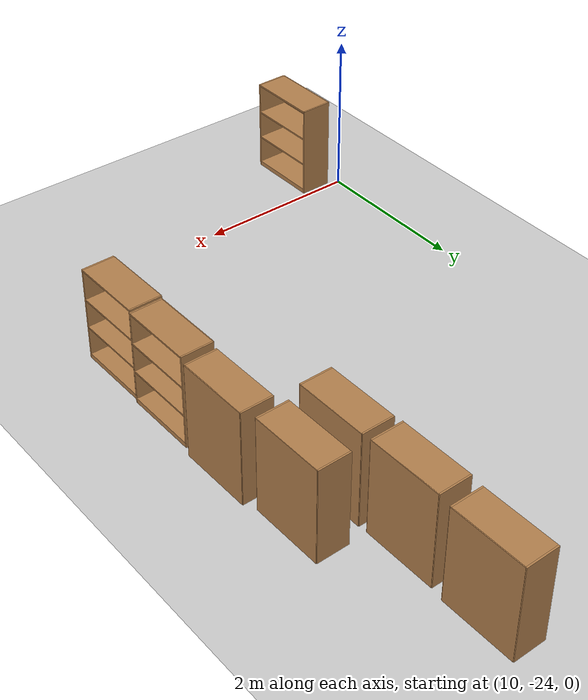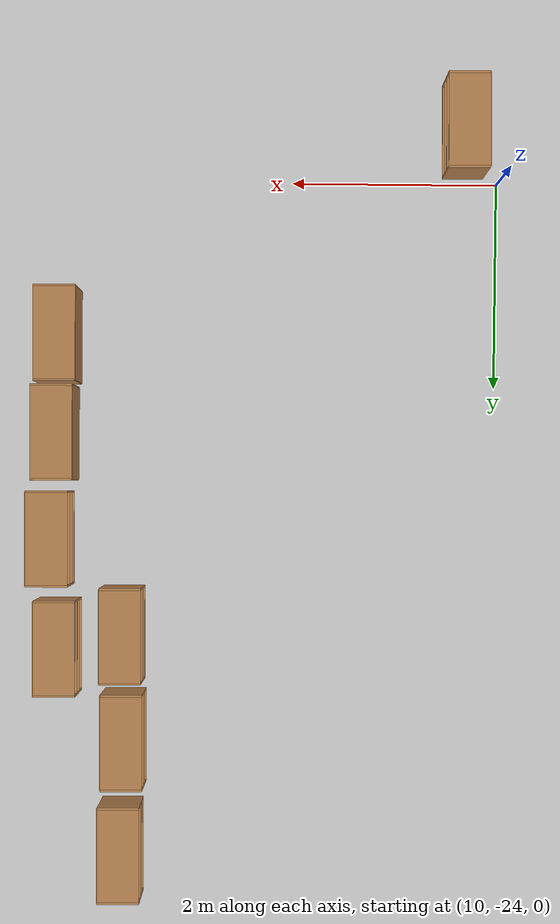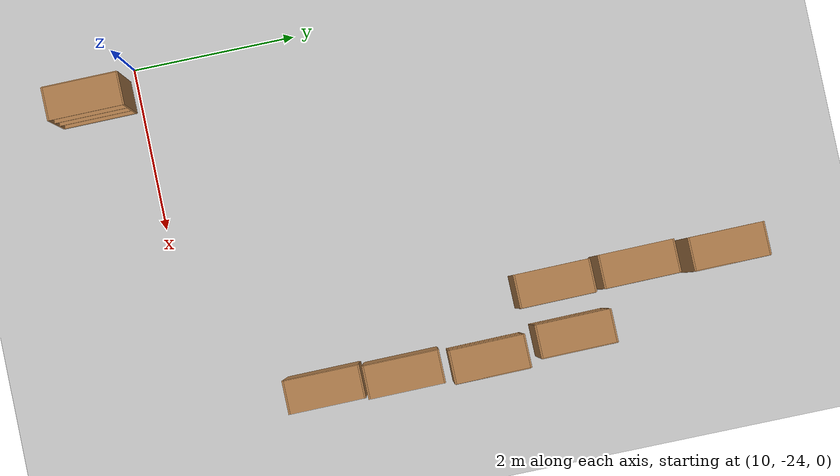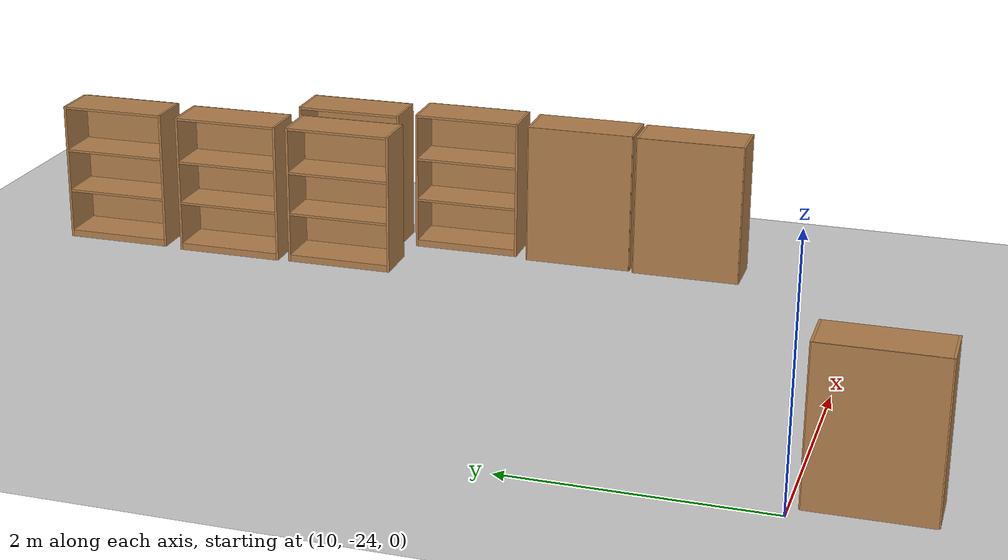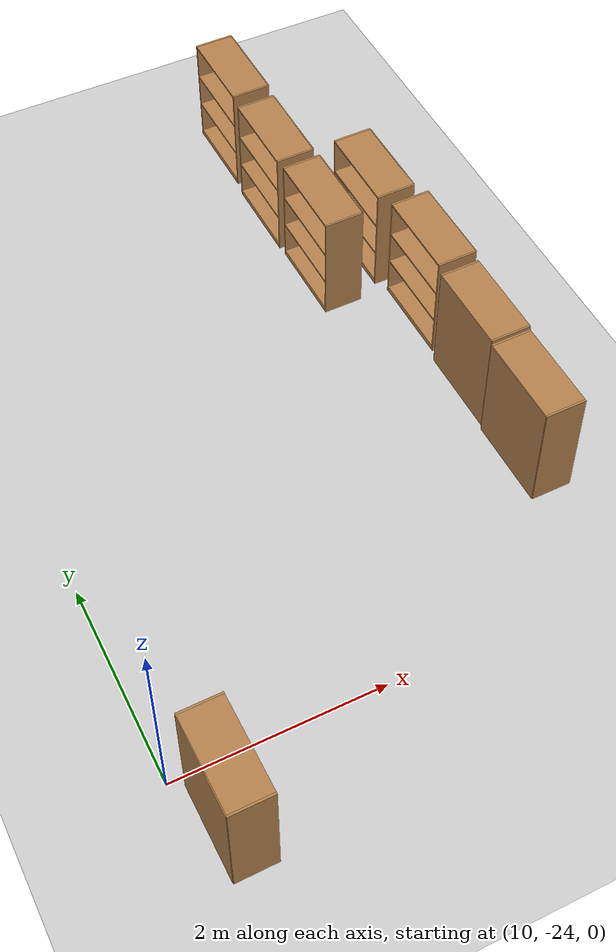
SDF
<sdf version="1.6">
 <world name="default">
  <model name="ground_plane">
   <static>1</static>
   <link name="link">
    <collision name="collision">
     <geometry><plane><normal>0 0 1</normal><size>100 100</size></plane></geometry>
     <surface>
      <contact><collide_bitmask>65535</collide_bitmask></contact>
      <friction><ode><mu>100</mu><mu2>50</mu2></ode></friction>
     </surface>
    </collision>
    <visual name="visual">
     <cast_shadows>0</cast_shadows>
     <geometry><plane><normal>0 0 1</normal><size>100 100</size></plane></geometry>
     <material>
      <script><uri>file://media/materials/scripts/gazebo.material</uri><name>Gazebo/Grey</name></script>
     </material>
    </visual>
   </link>
  </model>
  <model name="bookshelf_clone_2_clone_clone_0_clone_3_clone_0_clone_1_clone_clone_clone">
   <static>1</static>
   <link name="link">
    <inertial><mass>1</mass></inertial>
    <collision name="back">
     <pose>0 0.005 0.6 0 -0 0</pose>
     <geometry><box><size>0.9 0.01 1.2</size></box></geometry>
    </collision>
    <visual name="visual1">
     <pose>0 0.005 0.6 0 -0 0</pose>
     <geometry><box><size>0.9 0.01 1.2</size></box></geometry>
     <material>
      <script><uri>file://media/materials/scripts/gazebo.material</uri><name>Gazebo/Wood</name></script>
     </material>
    </visual>
    <collision name="left_side">
     <pose>0.45 -0.195 0.6 0 -0 0</pose>
     <geometry><box><size>0.02 0.4 1.2</size></box></geometry>
    </collision>
    <visual name="visual2">
     <pose>0.45 -0.195 0.6 0 -0 0</pose>
     <geometry><box><size>0.02 0.4 1.2</size></box></geometry>
     <material>
      <script><uri>file://media/materials/scripts/gazebo.material</uri><name>Gazebo/Wood</name></script>
     </material>
    </visual>
    <collision name="right_side">
     <pose>-0.45 -0.195 0.6 0 -0 0</pose>
     <geometry><box><size>0.02 0.4 1.2</size></box></geometry>
    </collision>
    <visual name="visual3">
     <pose>-0.45 -0.195 0.6 0 -0 0</pose>
     <geometry><box><size>0.02 0.4 1.2</size></box></geometry>
     <material>
      <script><uri>file://media/materials/scripts/gazebo.material</uri><name>Gazebo/Wood</name></script>
     </material>
    </visual>
    <collision name="bottom">
     <pose>0 -0.195 0.03 0 -0 0</pose>
     <geometry><box><size>0.88 0.4 0.06</size></box></geometry>
    </collision>
    <visual name="visual4">
     <pose>0 -0.195 0.03 0 -0 0</pose>
     <geometry><box><size>0.88 0.4 0.06</size></box></geometry>
     <material>
      <script><uri>file://media/materials/scripts/gazebo.material</uri><name>Gazebo/Wood</name></script>
     </material>
    </visual>
    <collision name="top">
     <pose>0 -0.195 1.19 0 -0 0</pose>
     <geometry><box><size>0.88 0.4 0.02</size></box></geometry>
    </collision>
    <visual name="visual5">
     <pose>0 -0.195 1.19 0 -0 0</pose>
     <geometry><box><size>0.88 0.4 0.02</size></box></geometry>
     <material>
      <script><uri>file://media/materials/scripts/gazebo.material</uri><name>Gazebo/Wood</name></script>
     </material>
    </visual>
    <collision name="low_shelf">
     <pose>0 -0.195 0.43 0 -0 0</pose>
     <geometry><box><size>0.88 0.4 0.02</size></box></geometry>
    </collision>
    <visual name="visual6">
     <pose>0 -0.195 0.43 0 -0 0</pose>
     <geometry><box><size>0.88 0.4 0.02</size></box></geometry>
     <material>
      <script><uri>file://media/materials/scripts/gazebo.material</uri><name>Gazebo/Wood</name></script>
     </material>
    </visual>
    <collision name="high_shelf">
     <pose>0 -0.195 0.8 0 -0 0</pose>
     <geometry><box><size>0.88 0.4 0.02</size></box></geometry>
    </collision>
    <visual name="visual7">
     <pose>0 -0.195 0.8 0 -0 0</pose>
     <geometry><box><size>0.88 0.4 0.02</size></box></geometry>
     <material>
      <script><uri>file://media/materials/scripts/gazebo.material</uri><name>Gazebo/Wood</name></script>
     </material>
    </visual>
   </link>
   <pose>13.8023 -19.5673 0 0 0 -1.56003</pose>
  </model>
  <model name="bookshelf_clone_2_clone_clone_0_clone_3_clone_0_clone_1_clone_clone_clone_0">
   <static>1</static>
   <link name="link">
    <inertial><mass>1</mass></inertial>
    <collision name="back">
     <pose>0 0.005 0.6 0 -0 0</pose>
     <geometry><box><size>0.9 0.01 1.2</size></box></geometry>
    </collision>
    <visual name="visual1">
     <pose>0 0.005 0.6 0 -0 0</pose>
     <geometry><box><size>0.9 0.01 1.2</size></box></geometry>
     <material>
      <script><uri>file://media/materials/scripts/gazebo.material</uri><name>Gazebo/Wood</name></script>
     </material>
    </visual>
    <collision name="left_side">
     <pose>0.45 -0.195 0.6 0 -0 0</pose>
     <geometry><box><size>0.02 0.4 1.2</size></box></geometry>
    </collision>
    <visual name="visual2">
     <pose>0.45 -0.195 0.6 0 -0 0</pose>
     <geometry><box><size>0.02 0.4 1.2</size></box></geometry>
     <material>
      <script><uri>file://media/materials/scripts/gazebo.material</uri><name>Gazebo/Wood</name></script>
     </material>
    </visual>
    <collision name="right_side">
     <pose>-0.45 -0.195 0.6 0 -0 0</pose>
     <geometry><box><size>0.02 0.4 1.2</size></box></geometry>
    </collision>
    <visual name="visual3">
     <pose>-0.45 -0.195 0.6 0 -0 0</pose>
     <geometry><box><size>0.02 0.4 1.2</size></box></geometry>
     <material>
      <script><uri>file://media/materials/scripts/gazebo.material</uri><name>Gazebo/Wood</name></script>
     </material>
    </visual>
    <collision name="bottom">
     <pose>0 -0.195 0.03 0 -0 0</pose>
     <geometry><box><size>0.88 0.4 0.06</size></box></geometry>
    </collision>
    <visual name="visual4">
     <pose>0 -0.195 0.03 0 -0 0</pose>
     <geometry><box><size>0.88 0.4 0.06</size></box></geometry>
     <material>
      <script><uri>file://media/materials/scripts/gazebo.material</uri><name>Gazebo/Wood</name></script>
     </material>
    </visual>
    <collision name="top">
     <pose>0 -0.195 1.19 0 -0 0</pose>
     <geometry><box><size>0.88 0.4 0.02</size></box></geometry>
    </collision>
    <visual name="visual5">
     <pose>0 -0.195 1.19 0 -0 0</pose>
     <geometry><box><size>0.88 0.4 0.02</size></box></geometry>
     <material>
      <script><uri>file://media/materials/scripts/gazebo.material</uri><name>Gazebo/Wood</name></script>
     </material>
    </visual>
    <collision name="low_shelf">
     <pose>0 -0.195 0.43 0 -0 0</pose>
     <geometry><box><size>0.88 0.4 0.02</size></box></geometry>
    </collision>
    <visual name="visual6">
     <pose>0 -0.195 0.43 0 -0 0</pose>
     <geometry><box><size>0.88 0.4 0.02</size></box></geometry>
     <material>
      <script><uri>file://media/materials/scripts/gazebo.material</uri><name>Gazebo/Wood</name></script>
     </material>
    </visual>
    <collision name="high_shelf">
     <pose>0 -0.195 0.8 0 -0 0</pose>
     <geometry><box><size>0.88 0.4 0.02</size></box></geometry>
    </collision>
    <visual name="visual7">
     <pose>0 -0.195 0.8 0 -0 0</pose>
     <geometry><box><size>0.88 0.4 0.02</size></box></geometry>
     <material>
      <script><uri>file://media/materials/scripts/gazebo.material</uri><name>Gazebo/Wood</name></script>
     </material>
    </visual>
   </link>
   <pose>13.778 -18.5568 0 0 0 -1.56003</pose>
  </model>
  <model name="bookshelf_clone_2_clone_clone_0_clone_3_clone_0_clone_1_clone_clone_clone_1">
   <static>1</static>
   <link name="link">
    <inertial><mass>1</mass></inertial>
    <collision name="back">
     <pose>0 0.005 0.6 0 -0 0</pose>
     <geometry><box><size>0.9 0.01 1.2</size></box></geometry>
    </collision>
    <visual name="visual1">
     <pose>0 0.005 0.6 0 -0 0</pose>
     <geometry><box><size>0.9 0.01 1.2</size></box></geometry>
     <material>
      <script><uri>file://media/materials/scripts/gazebo.material</uri><name>Gazebo/Wood</name></script>
     </material>
    </visual>
    <collision name="left_side">
     <pose>0.45 -0.195 0.6 0 -0 0</pose>
     <geometry><box><size>0.02 0.4 1.2</size></box></geometry>
    </collision>
    <visual name="visual2">
     <pose>0.45 -0.195 0.6 0 -0 0</pose>
     <geometry><box><size>0.02 0.4 1.2</size></box></geometry>
     <material>
      <script><uri>file://media/materials/scripts/gazebo.material</uri><name>Gazebo/Wood</name></script>
     </material>
    </visual>
    <collision name="right_side">
     <pose>-0.45 -0.195 0.6 0 -0 0</pose>
     <geometry><box><size>0.02 0.4 1.2</size></box></geometry>
    </collision>
    <visual name="visual3">
     <pose>-0.45 -0.195 0.6 0 -0 0</pose>
     <geometry><box><size>0.02 0.4 1.2</size></box></geometry>
     <material>
      <script><uri>file://media/materials/scripts/gazebo.material</uri><name>Gazebo/Wood</name></script>
     </material>
    </visual>
    <collision name="bottom">
     <pose>0 -0.195 0.03 0 -0 0</pose>
     <geometry><box><size>0.88 0.4 0.06</size></box></geometry>
    </collision>
    <visual name="visual4">
     <pose>0 -0.195 0.03 0 -0 0</pose>
     <geometry><box><size>0.88 0.4 0.06</size></box></geometry>
     <material>
      <script><uri>file://media/materials/scripts/gazebo.material</uri><name>Gazebo/Wood</name></script>
     </material>
    </visual>
    <collision name="top">
     <pose>0 -0.195 1.19 0 -0 0</pose>
     <geometry><box><size>0.88 0.4 0.02</size></box></geometry>
    </collision>
    <visual name="visual5">
     <pose>0 -0.195 1.19 0 -0 0</pose>
     <geometry><box><size>0.88 0.4 0.02</size></box></geometry>
     <material>
      <script><uri>file://media/materials/scripts/gazebo.material</uri><name>Gazebo/Wood</name></script>
     </material>
    </visual>
    <collision name="low_shelf">
     <pose>0 -0.195 0.43 0 -0 0</pose>
     <geometry><box><size>0.88 0.4 0.02</size></box></geometry>
    </collision>
    <visual name="visual6">
     <pose>0 -0.195 0.43 0 -0 0</pose>
     <geometry><box><size>0.88 0.4 0.02</size></box></geometry>
     <material>
      <script><uri>file://media/materials/scripts/gazebo.material</uri><name>Gazebo/Wood</name></script>
     </material>
    </visual>
    <collision name="high_shelf">
     <pose>0 -0.195 0.8 0 -0 0</pose>
     <geometry><box><size>0.88 0.4 0.02</size></box></geometry>
    </collision>
    <visual name="visual7">
     <pose>0 -0.195 0.8 0 -0 0</pose>
     <geometry><box><size>0.88 0.4 0.02</size></box></geometry>
     <material>
      <script><uri>file://media/materials/scripts/gazebo.material</uri><name>Gazebo/Wood</name></script>
     </material>
    </visual>
   </link>
   <pose>13.794 -17.4856 0 0 0 -1.56003</pose>
  </model>
  <model name="bookshelf_clone_2_clone_clone_0_clone_3_clone_0_clone_1_clone_clone_clone_clone">
   <static>1</static>
   <link name="link">
    <inertial><mass>1</mass></inertial>
    <collision name="back">
     <pose>0 0.005 0.6 0 -0 0</pose>
     <geometry><box><size>0.9 0.01 1.2</size></box></geometry>
    </collision>
    <visual name="visual1">
     <pose>0 0.005 0.6 0 -0 0</pose>
     <geometry><box><size>0.9 0.01 1.2</size></box></geometry>
     <material>
      <script><uri>file://media/materials/scripts/gazebo.material</uri><name>Gazebo/Wood</name></script>
     </material>
    </visual>
    <collision name="left_side">
     <pose>0.45 -0.195 0.6 0 -0 0</pose>
     <geometry><box><size>0.02 0.4 1.2</size></box></geometry>
    </collision>
    <visual name="visual2">
     <pose>0.45 -0.195 0.6 0 -0 0</pose>
     <geometry><box><size>0.02 0.4 1.2</size></box></geometry>
     <material>
      <script><uri>file://media/materials/scripts/gazebo.material</uri><name>Gazebo/Wood</name></script>
     </material>
    </visual>
    <collision name="right_side">
     <pose>-0.45 -0.195 0.6 0 -0 0</pose>
     <geometry><box><size>0.02 0.4 1.2</size></box></geometry>
    </collision>
    <visual name="visual3">
     <pose>-0.45 -0.195 0.6 0 -0 0</pose>
     <geometry><box><size>0.02 0.4 1.2</size></box></geometry>
     <material>
      <script><uri>file://media/materials/scripts/gazebo.material</uri><name>Gazebo/Wood</name></script>
     </material>
    </visual>
    <collision name="bottom">
     <pose>0 -0.195 0.03 0 -0 0</pose>
     <geometry><box><size>0.88 0.4 0.06</size></box></geometry>
    </collision>
    <visual name="visual4">
     <pose>0 -0.195 0.03 0 -0 0</pose>
     <geometry><box><size>0.88 0.4 0.06</size></box></geometry>
     <material>
      <script><uri>file://media/materials/scripts/gazebo.material</uri><name>Gazebo/Wood</name></script>
     </material>
    </visual>
    <collision name="top">
     <pose>0 -0.195 1.19 0 -0 0</pose>
     <geometry><box><size>0.88 0.4 0.02</size></box></geometry>
    </collision>
    <visual name="visual5">
     <pose>0 -0.195 1.19 0 -0 0</pose>
     <geometry><box><size>0.88 0.4 0.02</size></box></geometry>
     <material>
      <script><uri>file://media/materials/scripts/gazebo.material</uri><name>Gazebo/Wood</name></script>
     </material>
    </visual>
    <collision name="low_shelf">
     <pose>0 -0.195 0.43 0 -0 0</pose>
     <geometry><box><size>0.88 0.4 0.02</size></box></geometry>
    </collision>
    <visual name="visual6">
     <pose>0 -0.195 0.43 0 -0 0</pose>
     <geometry><box><size>0.88 0.4 0.02</size></box></geometry>
     <material>
      <script><uri>file://media/materials/scripts/gazebo.material</uri><name>Gazebo/Wood</name></script>
     </material>
    </visual>
    <collision name="high_shelf">
     <pose>0 -0.195 0.8 0 -0 0</pose>
     <geometry><box><size>0.88 0.4 0.02</size></box></geometry>
    </collision>
    <visual name="visual7">
     <pose>0 -0.195 0.8 0 -0 0</pose>
     <geometry><box><size>0.88 0.4 0.02</size></box></geometry>
     <material>
      <script><uri>file://media/materials/scripts/gazebo.material</uri><name>Gazebo/Wood</name></script>
     </material>
    </visual>
   </link>
   <pose>14.0872 -21.5119 0 0 -0 1.57896</pose>
  </model>
  <model name="bookshelf_clone_2_clone_clone_0_clone_3_clone_0_clone_1_clone_clone_clone_clone_0">
   <static>1</static>
   <link name="link">
    <inertial><mass>1</mass></inertial>
    <collision name="back">
     <pose>0 0.005 0.6 0 -0 0</pose>
     <geometry><box><size>0.9 0.01 1.2</size></box></geometry>
    </collision>
    <visual name="visual1">
     <pose>0 0.005 0.6 0 -0 0</pose>
     <geometry><box><size>0.9 0.01 1.2</size></box></geometry>
     <material>
      <script><uri>file://media/materials/scripts/gazebo.material</uri><name>Gazebo/Wood</name></script>
     </material>
    </visual>
    <collision name="left_side">
     <pose>0.45 -0.195 0.6 0 -0 0</pose>
     <geometry><box><size>0.02 0.4 1.2</size></box></geometry>
    </collision>
    <visual name="visual2">
     <pose>0.45 -0.195 0.6 0 -0 0</pose>
     <geometry><box><size>0.02 0.4 1.2</size></box></geometry>
     <material>
      <script><uri>file://media/materials/scripts/gazebo.material</uri><name>Gazebo/Wood</name></script>
     </material>
    </visual>
    <collision name="right_side">
     <pose>-0.45 -0.195 0.6 0 -0 0</pose>
     <geometry><box><size>0.02 0.4 1.2</size></box></geometry>
    </collision>
    <visual name="visual3">
     <pose>-0.45 -0.195 0.6 0 -0 0</pose>
     <geometry><box><size>0.02 0.4 1.2</size></box></geometry>
     <material>
      <script><uri>file://media/materials/scripts/gazebo.material</uri><name>Gazebo/Wood</name></script>
     </material>
    </visual>
    <collision name="bottom">
     <pose>0 -0.195 0.03 0 -0 0</pose>
     <geometry><box><size>0.88 0.4 0.06</size></box></geometry>
    </collision>
    <visual name="visual4">
     <pose>0 -0.195 0.03 0 -0 0</pose>
     <geometry><box><size>0.88 0.4 0.06</size></box></geometry>
     <material>
      <script><uri>file://media/materials/scripts/gazebo.material</uri><name>Gazebo/Wood</name></script>
     </material>
    </visual>
    <collision name="top">
     <pose>0 -0.195 1.19 0 -0 0</pose>
     <geometry><box><size>0.88 0.4 0.02</size></box></geometry>
    </collision>
    <visual name="visual5">
     <pose>0 -0.195 1.19 0 -0 0</pose>
     <geometry><box><size>0.88 0.4 0.02</size></box></geometry>
     <material>
      <script><uri>file://media/materials/scripts/gazebo.material</uri><name>Gazebo/Wood</name></script>
     </material>
    </visual>
    <collision name="low_shelf">
     <pose>0 -0.195 0.43 0 -0 0</pose>
     <geometry><box><size>0.88 0.4 0.02</size></box></geometry>
    </collision>
    <visual name="visual6">
     <pose>0 -0.195 0.43 0 -0 0</pose>
     <geometry><box><size>0.88 0.4 0.02</size></box></geometry>
     <material>
      <script><uri>file://media/materials/scripts/gazebo.material</uri><name>Gazebo/Wood</name></script>
     </material>
    </visual>
    <collision name="high_shelf">
     <pose>0 -0.195 0.8 0 -0 0</pose>
     <geometry><box><size>0.88 0.4 0.02</size></box></geometry>
    </collision>
    <visual name="visual7">
     <pose>0 -0.195 0.8 0 -0 0</pose>
     <geometry><box><size>0.88 0.4 0.02</size></box></geometry>
     <material>
      <script><uri>file://media/materials/scripts/gazebo.material</uri><name>Gazebo/Wood</name></script>
     </material>
    </visual>
   </link>
   <pose>14.5095 -20.4899 0 0 0 -1.56003</pose>
  </model>
  <model name="bookshelf_clone_2_clone_clone_0_clone_3_clone_0_clone_1_clone_clone_clone_clone_1">
   <static>1</static>
   <link name="link">
    <inertial><mass>1</mass></inertial>
    <collision name="back">
     <pose>0 0.005 0.6 0 -0 0</pose>
     <geometry><box><size>0.9 0.01 1.2</size></box></geometry>
    </collision>
    <visual name="visual1">
     <pose>0 0.005 0.6 0 -0 0</pose>
     <geometry><box><size>0.9 0.01 1.2</size></box></geometry>
     <material>
      <script><uri>file://media/materials/scripts/gazebo.material</uri><name>Gazebo/Wood</name></script>
     </material>
    </visual>
    <collision name="left_side">
     <pose>0.45 -0.195 0.6 0 -0 0</pose>
     <geometry><box><size>0.02 0.4 1.2</size></box></geometry>
    </collision>
    <visual name="visual2">
     <pose>0.45 -0.195 0.6 0 -0 0</pose>
     <geometry><box><size>0.02 0.4 1.2</size></box></geometry>
     <material>
      <script><uri>file://media/materials/scripts/gazebo.material</uri><name>Gazebo/Wood</name></script>
     </material>
    </visual>
    <collision name="right_side">
     <pose>-0.45 -0.195 0.6 0 -0 0</pose>
     <geometry><box><size>0.02 0.4 1.2</size></box></geometry>
    </collision>
    <visual name="visual3">
     <pose>-0.45 -0.195 0.6 0 -0 0</pose>
     <geometry><box><size>0.02 0.4 1.2</size></box></geometry>
     <material>
      <script><uri>file://media/materials/scripts/gazebo.material</uri><name>Gazebo/Wood</name></script>
     </material>
    </visual>
    <collision name="bottom">
     <pose>0 -0.195 0.03 0 -0 0</pose>
     <geometry><box><size>0.88 0.4 0.06</size></box></geometry>
    </collision>
    <visual name="visual4">
     <pose>0 -0.195 0.03 0 -0 0</pose>
     <geometry><box><size>0.88 0.4 0.06</size></box></geometry>
     <material>
      <script><uri>file://media/materials/scripts/gazebo.material</uri><name>Gazebo/Wood</name></script>
     </material>
    </visual>
    <collision name="top">
     <pose>0 -0.195 1.19 0 -0 0</pose>
     <geometry><box><size>0.88 0.4 0.02</size></box></geometry>
    </collision>
    <visual name="visual5">
     <pose>0 -0.195 1.19 0 -0 0</pose>
     <geometry><box><size>0.88 0.4 0.02</size></box></geometry>
     <material>
      <script><uri>file://media/materials/scripts/gazebo.material</uri><name>Gazebo/Wood</name></script>
     </material>
    </visual>
    <collision name="low_shelf">
     <pose>0 -0.195 0.43 0 -0 0</pose>
     <geometry><box><size>0.88 0.4 0.02</size></box></geometry>
    </collision>
    <visual name="visual6">
     <pose>0 -0.195 0.43 0 -0 0</pose>
     <geometry><box><size>0.88 0.4 0.02</size></box></geometry>
     <material>
      <script><uri>file://media/materials/scripts/gazebo.material</uri><name>Gazebo/Wood</name></script>
     </material>
    </visual>
    <collision name="high_shelf">
     <pose>0 -0.195 0.8 0 -0 0</pose>
     <geometry><box><size>0.88 0.4 0.02</size></box></geometry>
    </collision>
    <visual name="visual7">
     <pose>0 -0.195 0.8 0 -0 0</pose>
     <geometry><box><size>0.88 0.4 0.02</size></box></geometry>
     <material>
      <script><uri>file://media/materials/scripts/gazebo.material</uri><name>Gazebo/Wood</name></script>
     </material>
    </visual>
   </link>
   <pose>14.425 -19.4442 0 0 0 -1.56003</pose>
  </model>
  <model name="bookshelf_clone_2_clone_clone_0_clone_3_clone_0_clone_1_clone_clone_clone_clone_clone">
   <static>1</static>
   <link name="link">
    <inertial><mass>1</mass></inertial>
    <collision name="back">
     <pose>0 0.005 0.6 0 -0 0</pose>
     <geometry><box><size>0.9 0.01 1.2</size></box></geometry>
    </collision>
    <visual name="visual1">
     <pose>0 0.005 0.6 0 -0 0</pose>
     <geometry><box><size>0.9 0.01 1.2</size></box></geometry>
     <material>
      <script><uri>file://media/materials/scripts/gazebo.material</uri><name>Gazebo/Wood</name></script>
     </material>
    </visual>
    <collision name="left_side">
     <pose>0.45 -0.195 0.6 0 -0 0</pose>
     <geometry><box><size>0.02 0.4 1.2</size></box></geometry>
    </collision>
    <visual name="visual2">
     <pose>0.45 -0.195 0.6 0 -0 0</pose>
     <geometry><box><size>0.02 0.4 1.2</size></box></geometry>
     <material>
      <script><uri>file://media/materials/scripts/gazebo.material</uri><name>Gazebo/Wood</name></script>
     </material>
    </visual>
    <collision name="right_side">
     <pose>-0.45 -0.195 0.6 0 -0 0</pose>
     <geometry><box><size>0.02 0.4 1.2</size></box></geometry>
    </collision>
    <visual name="visual3">
     <pose>-0.45 -0.195 0.6 0 -0 0</pose>
     <geometry><box><size>0.02 0.4 1.2</size></box></geometry>
     <material>
      <script><uri>file://media/materials/scripts/gazebo.material</uri><name>Gazebo/Wood</name></script>
     </material>
    </visual>
    <collision name="bottom">
     <pose>0 -0.195 0.03 0 -0 0</pose>
     <geometry><box><size>0.88 0.4 0.06</size></box></geometry>
    </collision>
    <visual name="visual4">
     <pose>0 -0.195 0.03 0 -0 0</pose>
     <geometry><box><size>0.88 0.4 0.06</size></box></geometry>
     <material>
      <script><uri>file://media/materials/scripts/gazebo.material</uri><name>Gazebo/Wood</name></script>
     </material>
    </visual>
    <collision name="top">
     <pose>0 -0.195 1.19 0 -0 0</pose>
     <geometry><box><size>0.88 0.4 0.02</size></box></geometry>
    </collision>
    <visual name="visual5">
     <pose>0 -0.195 1.19 0 -0 0</pose>
     <geometry><box><size>0.88 0.4 0.02</size></box></geometry>
     <material>
      <script><uri>file://media/materials/scripts/gazebo.material</uri><name>Gazebo/Wood</name></script>
     </material>
    </visual>
    <collision name="low_shelf">
     <pose>0 -0.195 0.43 0 -0 0</pose>
     <geometry><box><size>0.88 0.4 0.02</size></box></geometry>
    </collision>
    <visual name="visual6">
     <pose>0 -0.195 0.43 0 -0 0</pose>
     <geometry><box><size>0.88 0.4 0.02</size></box></geometry>
     <material>
      <script><uri>file://media/materials/scripts/gazebo.material</uri><name>Gazebo/Wood</name></script>
     </material>
    </visual>
    <collision name="high_shelf">
     <pose>0 -0.195 0.8 0 -0 0</pose>
     <geometry><box><size>0.88 0.4 0.02</size></box></geometry>
    </collision>
    <visual name="visual7">
     <pose>0 -0.195 0.8 0 -0 0</pose>
     <geometry><box><size>0.88 0.4 0.02</size></box></geometry>
     <material>
      <script><uri>file://media/materials/scripts/gazebo.material</uri><name>Gazebo/Wood</name></script>
     </material>
    </visual>
   </link>
   <pose>14.069 -22.458 0 0 -0 1.57896</pose>
  </model>
  <model name="bookshelf_clone_2_clone_clone_0_clone_3_clone_0_clone_1_clone_clone_clone_clone_clone_clone_0">
   <static>1</static>
   <link name="link">
    <inertial><mass>1</mass></inertial>
    <collision name="back">
     <pose>0 0.005 0.6 0 -0 0</pose>
     <geometry><box><size>0.9 0.01 1.2</size></box></geometry>
    </collision>
    <visual name="visual1">
     <pose>0 0.005 0.6 0 -0 0</pose>
     <geometry><box><size>0.9 0.01 1.2</size></box></geometry>
     <material>
      <script><uri>file://media/materials/scripts/gazebo.material</uri><name>Gazebo/Wood</name></script>
     </material>
    </visual>
    <collision name="left_side">
     <pose>0.45 -0.195 0.6 0 -0 0</pose>
     <geometry><box><size>0.02 0.4 1.2</size></box></geometry>
    </collision>
    <visual name="visual2">
     <pose>0.45 -0.195 0.6 0 -0 0</pose>
     <geometry><box><size>0.02 0.4 1.2</size></box></geometry>
     <material>
      <script><uri>file://media/materials/scripts/gazebo.material</uri><name>Gazebo/Wood</name></script>
     </material>
    </visual>
    <collision name="right_side">
     <pose>-0.45 -0.195 0.6 0 -0 0</pose>
     <geometry><box><size>0.02 0.4 1.2</size></box></geometry>
    </collision>
    <visual name="visual3">
     <pose>-0.45 -0.195 0.6 0 -0 0</pose>
     <geometry><box><size>0.02 0.4 1.2</size></box></geometry>
     <material>
      <script><uri>file://media/materials/scripts/gazebo.material</uri><name>Gazebo/Wood</name></script>
     </material>
    </visual>
    <collision name="bottom">
     <pose>0 -0.195 0.03 0 -0 0</pose>
     <geometry><box><size>0.88 0.4 0.06</size></box></geometry>
    </collision>
    <visual name="visual4">
     <pose>0 -0.195 0.03 0 -0 0</pose>
     <geometry><box><size>0.88 0.4 0.06</size></box></geometry>
     <material>
      <script><uri>file://media/materials/scripts/gazebo.material</uri><name>Gazebo/Wood</name></script>
     </material>
    </visual>
    <collision name="top">
     <pose>0 -0.195 1.19 0 -0 0</pose>
     <geometry><box><size>0.88 0.4 0.02</size></box></geometry>
    </collision>
    <visual name="visual5">
     <pose>0 -0.195 1.19 0 -0 0</pose>
     <geometry><box><size>0.88 0.4 0.02</size></box></geometry>
     <material>
      <script><uri>file://media/materials/scripts/gazebo.material</uri><name>Gazebo/Wood</name></script>
     </material>
    </visual>
    <collision name="low_shelf">
     <pose>0 -0.195 0.43 0 -0 0</pose>
     <geometry><box><size>0.88 0.4 0.02</size></box></geometry>
    </collision>
    <visual name="visual6">
     <pose>0 -0.195 0.43 0 -0 0</pose>
     <geometry><box><size>0.88 0.4 0.02</size></box></geometry>
     <material>
      <script><uri>file://media/materials/scripts/gazebo.material</uri><name>Gazebo/Wood</name></script>
     </material>
    </visual>
    <collision name="high_shelf">
     <pose>0 -0.195 0.8 0 -0 0</pose>
     <geometry><box><size>0.88 0.4 0.02</size></box></geometry>
    </collision>
    <visual name="visual7">
     <pose>0 -0.195 0.8 0 -0 0</pose>
     <geometry><box><size>0.88 0.4 0.02</size></box></geometry>
     <material>
      <script><uri>file://media/materials/scripts/gazebo.material</uri><name>Gazebo/Wood</name></script>
     </material>
    </visual>
   </link>
   <pose>10.1407 -24.5261 0 0 -0 1.57896</pose>
  </model>
 </world>
</sdf>
